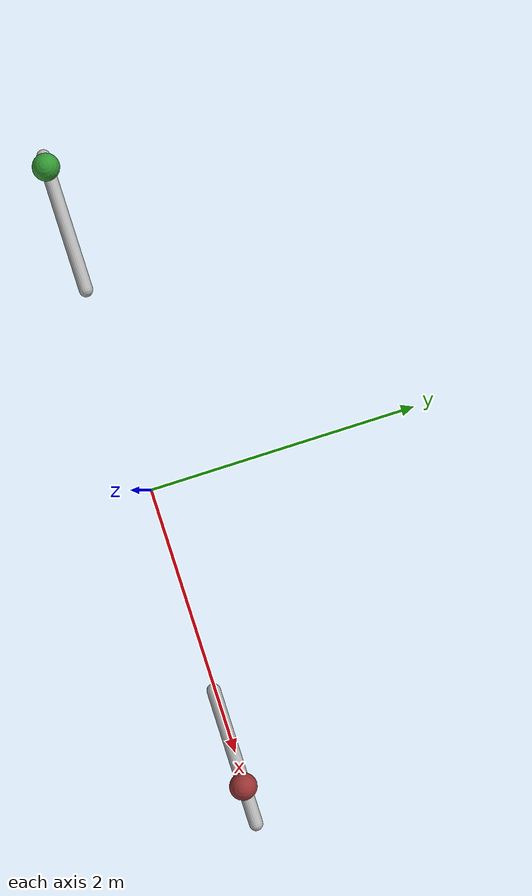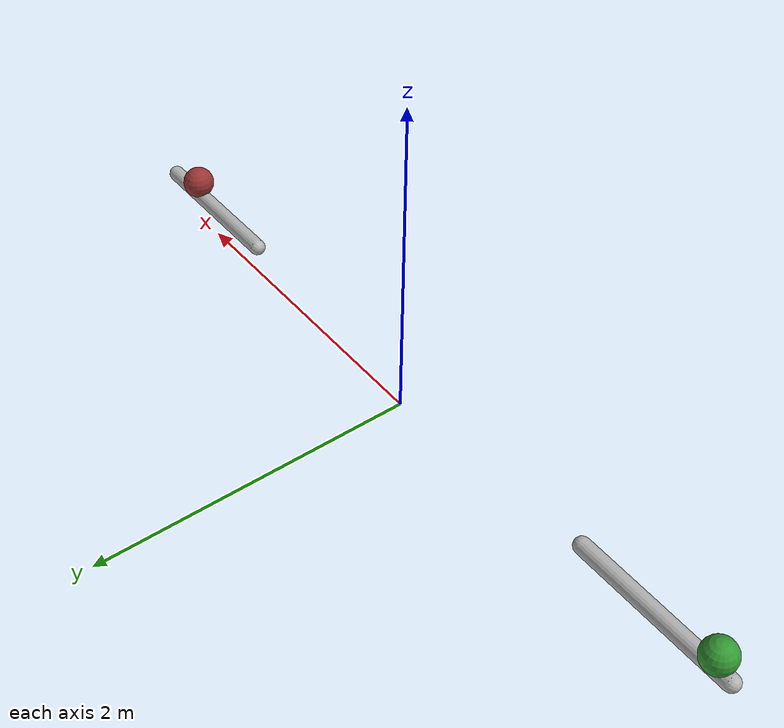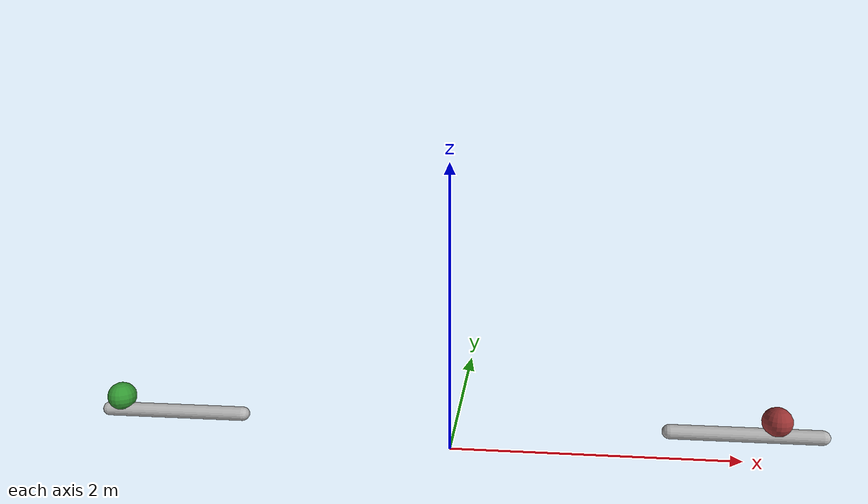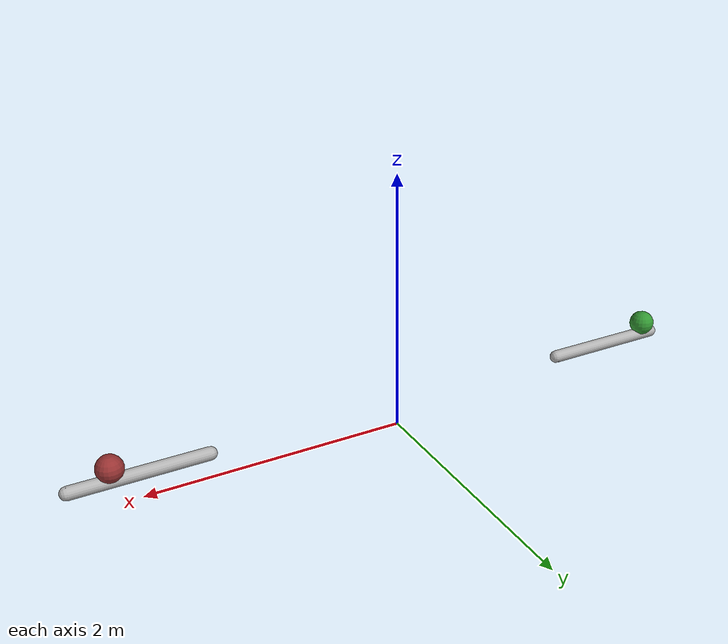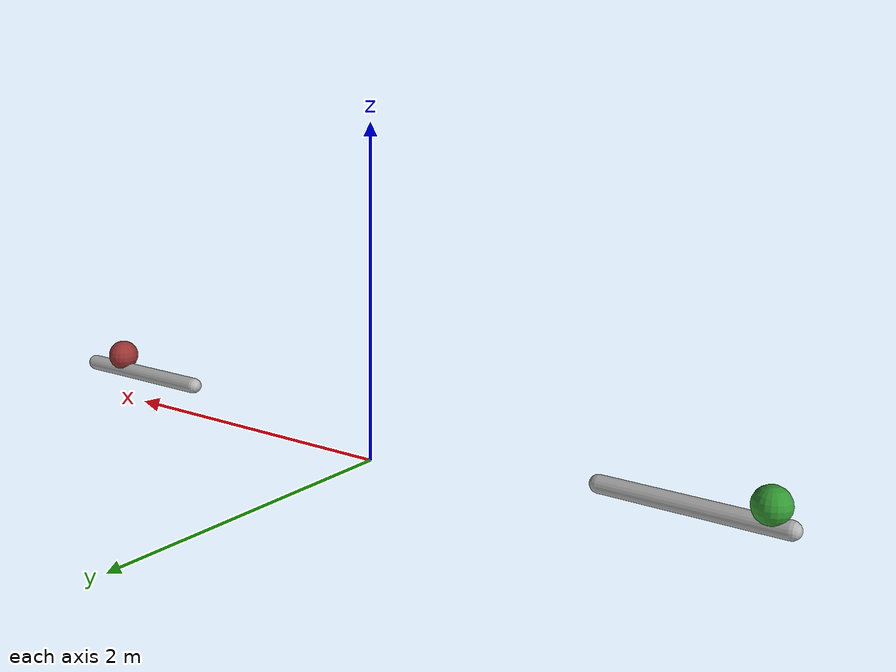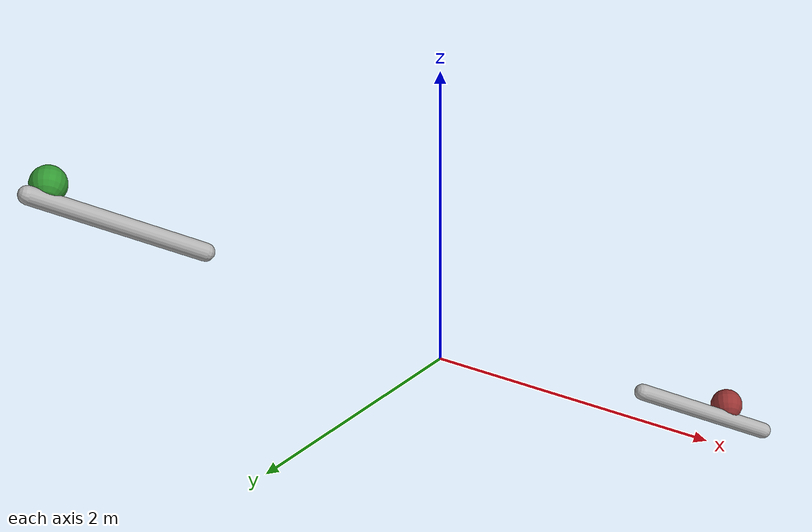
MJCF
<mujoco>
  <option gravity="0 0 -9.81" />
  <worldbody>
    <body name="object_1" pos="-2 0 0.2">
      <geom type="capsule" fromto="-0.5 0 0 0.5 0 0" size="0.05" rgba="0.7 0.7 0.7 1" />
      <joint type="hinge" axis="0 0 1" name="object_1_joint" />
    </body>
    <body name="object_2" pos="-2.4 0 0.3">
      <geom type="sphere" size="0.1" mass="1" rgba="0.2 0.6 0.2 1" />
    </body>
    <body name="object_3" pos="2 0 0.2">
      <geom type="capsule" fromto="-0.5 0 0 0.5 0 0" size="0.05" rgba="0.7 0.7 0.7 1" />
      <joint type="hinge" axis="0 0 1" name="object_3_joint" />
    </body>
    <body name="object_4" pos="2.2 0 0.3">
      <geom type="sphere" size="0.1" mass="1.2" rgba="0.6 0.2 0.2 1" />
    </body>
  </worldbody>
</mujoco>
